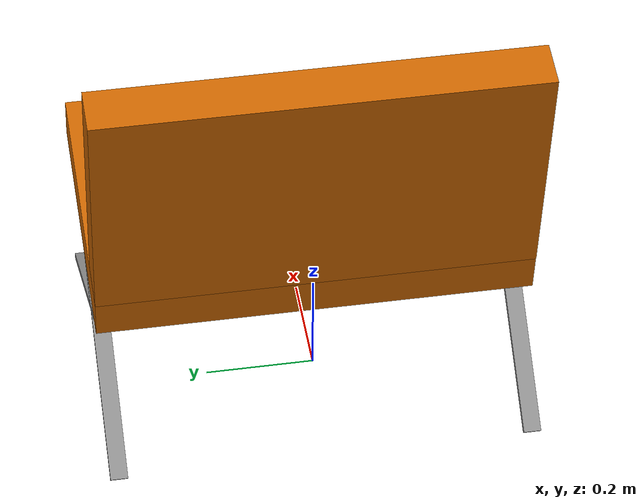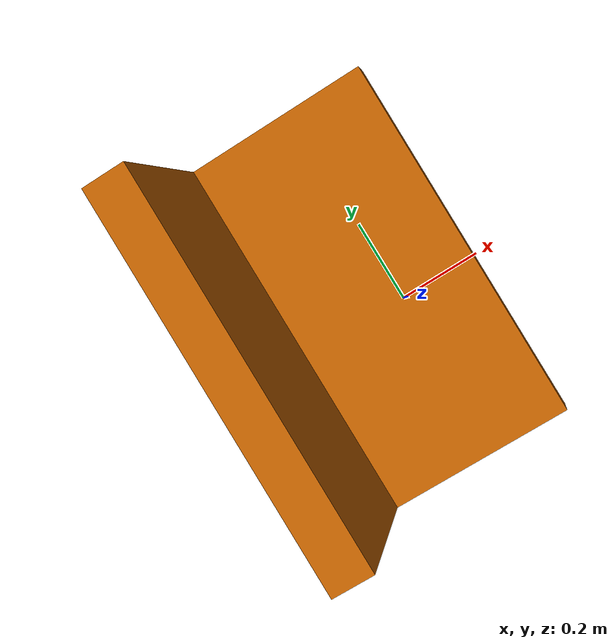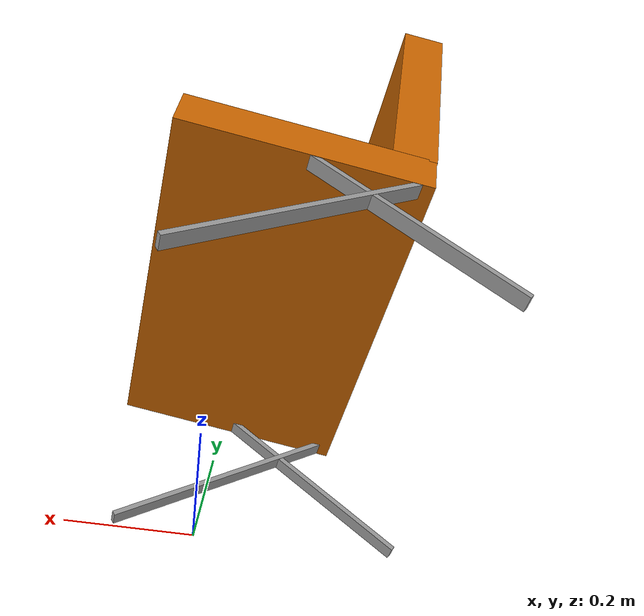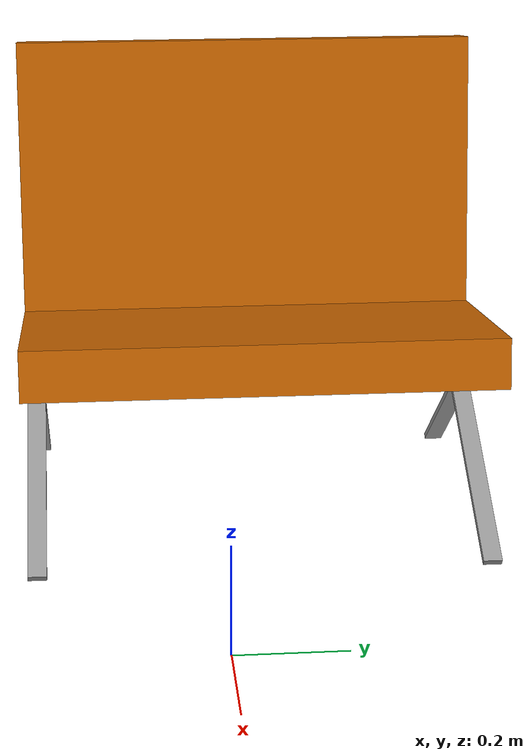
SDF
<?xml version='1.0'?>
<sdf version='1.6'>
  <model name='lounge_chair'>
    <link name='link_0'>
      <pose frame=''>-0.096052 0.046667 0.513201 0 -0.15 0</pose>
      <inertial>
        <mass>0.544036</mass>
        <inertia>
          <ixx>0.0258036</ixx>
          <ixy>0</ixy>
          <ixz>0</ixz>
          <iyy>0.016623</iyy>
          <iyz>0</iyz>
          <izz>0.0418228</izz>
        </inertia>
        <pose frame=''>0 0 0 0 -0 0</pose>
      </inertial>
      <self_collide>0</self_collide>
      <kinematic>0</kinematic>
      <gravity>1</gravity>
      <visual name='visual'>
        <pose frame=''>0 0 0 0 -0 0</pose>
        <geometry>
          <box>
            <size>0.45 0.75 0.08</size>
          </box>
        </geometry>
        <material>
          <lighting>1</lighting>
          <script>
            <uri>file://media/materials/scripts/gazebo.material</uri>
            <name>Gazebo/Grey</name>
          </script>
          <shader type='pixel'>
            <normal_map>__default__</normal_map>
          </shader>
          <ambient>0.8 0.4 0 1</ambient>
          <diffuse>0.7 0.7 0.7 1</diffuse>
          <specular>0.01 0.01 0.01 1</specular>
          <emissive>0 0 0 1</emissive>
        </material>
        <transparency>0</transparency>
        <cast_shadows>1</cast_shadows>
      </visual>
      <collision name='collision'>
        <laser_retro>0</laser_retro>
        <max_contacts>10</max_contacts>
        <pose frame=''>0 0 0 0 -0 0</pose>
        <geometry>
          <box>
            <size>0.45 0.75 0.08</size>
          </box>
        </geometry>
        <surface>
          <friction>
            <ode>
              <mu>1</mu>
              <mu2>1</mu2>
              <fdir1>0 0 0</fdir1>
              <slip1>0</slip1>
              <slip2>0</slip2>
            </ode>
            <torsional>
              <coefficient>1</coefficient>
              <patch_radius>0</patch_radius>
              <surface_radius>0</surface_radius>
              <use_patch_radius>1</use_patch_radius>
              <ode>
                <slip>0</slip>
              </ode>
            </torsional>
          </friction>
          <bounce>
            <restitution_coefficient>0</restitution_coefficient>
            <threshold>1e+06</threshold>
          </bounce>
          <contact>
            <collide_without_contact>0</collide_without_contact>
            <collide_without_contact_bitmask>1</collide_without_contact_bitmask>
            <collide_bitmask>1</collide_bitmask>
            <ode>
              <soft_cfm>0</soft_cfm>
              <soft_erp>0.2</soft_erp>
              <kp>1e+13</kp>
              <kd>1</kd>
              <max_vel>0.01</max_vel>
              <min_depth>0</min_depth>
            </ode>
            <bullet>
              <split_impulse>1</split_impulse>
              <split_impulse_penetration_threshold>-0.01</split_impulse_penetration_threshold>
              <soft_cfm>0</soft_cfm>
              <soft_erp>0.2</soft_erp>
              <kp>1e+13</kp>
              <kd>1</kd>
            </bullet>
          </contact>
        </surface>
      </collision>
    </link>
    <link name='link_0_clone'>
      <pose frame=''>-0.319159 0.046667 0.742889 3.14159 -1.42159 3.14159</pose>
      <inertial>
        <mass>0.41437</mass>
        <inertia>
          <ixx>0.0196446</ixx>
          <ixy>0</ixy>
          <ixz>0</ixz>
          <iyy>0.00743262</iyy>
          <iyz>0</iyz>
          <izz>0.0266352</izz>
        </inertia>
        <pose frame=''>0 0 0 0 -0 0</pose>
      </inertial>
      <self_collide>0</self_collide>
      <kinematic>0</kinematic>
      <gravity>1</gravity>
      <visual name='visual'>
        <pose frame=''>0 0 0 0 -0 0</pose>
        <geometry>
          <box>
            <size>0.45 0.75 0.08</size>
          </box>
        </geometry>
        <material>
          <lighting>1</lighting>
          <script>
            <uri>file://media/materials/scripts/gazebo.material</uri>
            <name>Gazebo/Grey</name>
          </script>
          <shader type='pixel'>
            <normal_map>__default__</normal_map>
          </shader>
          <ambient>0.8 0.4 0 1</ambient>
          <diffuse>0.7 0.7 0.7 1</diffuse>
          <specular>0.01 0.01 0.01 1</specular>
          <emissive>0 0 0 1</emissive>
        </material>
        <transparency>0</transparency>
        <cast_shadows>1</cast_shadows>
      </visual>
      <collision name='collision'>
        <laser_retro>0</laser_retro>
        <max_contacts>10</max_contacts>
        <pose frame=''>0 0 0 0 -0 0</pose>
        <geometry>
          <box>
            <size>0.45 0.75 0.08</size>
          </box>
        </geometry>
        <surface>
          <friction>
            <ode>
              <mu>1</mu>
              <mu2>1</mu2>
              <fdir1>0 0 0</fdir1>
              <slip1>0</slip1>
              <slip2>0</slip2>
            </ode>
            <torsional>
              <coefficient>1</coefficient>
              <patch_radius>0</patch_radius>
              <surface_radius>0</surface_radius>
              <use_patch_radius>1</use_patch_radius>
              <ode>
                <slip>0</slip>
              </ode>
            </torsional>
          </friction>
          <bounce>
            <restitution_coefficient>0</restitution_coefficient>
            <threshold>1e+06</threshold>
          </bounce>
          <contact>
            <collide_without_contact>0</collide_without_contact>
            <collide_without_contact_bitmask>1</collide_without_contact_bitmask>
            <collide_bitmask>1</collide_bitmask>
            <ode>
              <soft_cfm>0</soft_cfm>
              <soft_erp>0.2</soft_erp>
              <kp>1e+13</kp>
              <kd>1</kd>
              <max_vel>0.01</max_vel>
              <min_depth>0</min_depth>
            </ode>
            <bullet>
              <split_impulse>1</split_impulse>
              <split_impulse_penetration_threshold>-0.01</split_impulse_penetration_threshold>
              <soft_cfm>0</soft_cfm>
              <soft_erp>0.2</soft_erp>
              <kp>1e+13</kp>
              <kd>1</kd>
            </bullet>
          </contact>
        </surface>
      </collision>
    </link>
    <link name='link_2'>
      <pose frame=''>-0.087065 -0.312224 0.333962 0 -1.05637 0</pose>
      <inertial>
        <mass>0.489913</mass>
        <inertia>
          <ixx>0.00990087</ixx>
          <ixy>0</ixy>
          <ixz>0</ixz>
          <iyy>0.00980288</iyy>
          <iyz>0</iyz>
          <izz>0.00010615</izz>
        </inertia>
        <pose frame=''>0 0 0 0 -0 0</pose>
      </inertial>
      <self_collide>0</self_collide>
      <kinematic>0</kinematic>
      <gravity>1</gravity>
      <visual name='visual'>
        <pose frame=''>0 0 0 0 -0 0</pose>
        <geometry>
          <box>
            <size>0.01 0.03 0.489911</size>
          </box>
        </geometry>
        <material>
          <lighting>1</lighting>
          <script>
            <uri>file://media/materials/scripts/gazebo.material</uri>
            <name>Gazebo/Grey</name>
          </script>
          <shader type='pixel'>
            <normal_map>__default__</normal_map>
          </shader>
          <ambient>0.75 0.75 0.75 1</ambient>
          <diffuse>0.7 0.7 0.7 1</diffuse>
          <specular>0.01 0.01 0.01 1</specular>
          <emissive>0 0 0 1</emissive>
        </material>
        <transparency>0</transparency>
        <cast_shadows>1</cast_shadows>
      </visual>
      <collision name='collision'>
        <laser_retro>0</laser_retro>
        <max_contacts>10</max_contacts>
        <pose frame=''>0 0 0 0 -0 0</pose>
        <geometry>
          <box>
            <size>0.01 0.03 0.489911</size>
          </box>
        </geometry>
        <surface>
          <friction>
            <ode>
              <mu>1</mu>
              <mu2>1</mu2>
              <fdir1>0 0 0</fdir1>
              <slip1>0</slip1>
              <slip2>0</slip2>
            </ode>
            <torsional>
              <coefficient>1</coefficient>
              <patch_radius>0</patch_radius>
              <surface_radius>0</surface_radius>
              <use_patch_radius>1</use_patch_radius>
              <ode>
                <slip>0</slip>
              </ode>
            </torsional>
          </friction>
          <bounce>
            <restitution_coefficient>0</restitution_coefficient>
            <threshold>1e+06</threshold>
          </bounce>
          <contact>
            <collide_without_contact>0</collide_without_contact>
            <collide_without_contact_bitmask>1</collide_without_contact_bitmask>
            <collide_bitmask>1</collide_bitmask>
            <ode>
              <soft_cfm>0</soft_cfm>
              <soft_erp>0.2</soft_erp>
              <kp>1e+13</kp>
              <kd>1</kd>
              <max_vel>0.01</max_vel>
              <min_depth>0</min_depth>
            </ode>
            <bullet>
              <split_impulse>1</split_impulse>
              <split_impulse_penetration_threshold>-0.01</split_impulse_penetration_threshold>
              <soft_cfm>0</soft_cfm>
              <soft_erp>0.2</soft_erp>
              <kp>1e+13</kp>
              <kd>1</kd>
            </bullet>
          </contact>
        </surface>
      </collision>
    </link>
    <link name='link_2_clone'>
      <pose frame=''>-0.087065 0.406318 0.333962 0 -1.05637 0</pose>
      <inertial>
        <mass>0.489913</mass>
        <inertia>
          <ixx>0.00990087</ixx>
          <ixy>0</ixy>
          <ixz>0</ixz>
          <iyy>0.00980288</iyy>
          <iyz>0</iyz>
          <izz>0.00010615</izz>
        </inertia>
        <pose frame=''>0 0 0 0 -0 0</pose>
      </inertial>
      <self_collide>0</self_collide>
      <kinematic>0</kinematic>
      <gravity>1</gravity>
      <visual name='visual'>
        <pose frame=''>0 0 0 0 -0 0</pose>
        <geometry>
          <box>
            <size>0.01 0.03 0.489911</size>
          </box>
        </geometry>
        <material>
          <lighting>1</lighting>
          <script>
            <uri>file://media/materials/scripts/gazebo.material</uri>
            <name>Gazebo/Grey</name>
          </script>
          <shader type='pixel'>
            <normal_map>__default__</normal_map>
          </shader>
          <ambient>0.75 0.75 0.75 1</ambient>
          <diffuse>0.7 0.7 0.7 1</diffuse>
          <specular>0.01 0.01 0.01 1</specular>
          <emissive>0 0 0 1</emissive>
        </material>
        <transparency>0</transparency>
        <cast_shadows>1</cast_shadows>
      </visual>
      <collision name='collision'>
        <laser_retro>0</laser_retro>
        <max_contacts>10</max_contacts>
        <pose frame=''>0 0 0 0 -0 0</pose>
        <geometry>
          <box>
            <size>0.01 0.03 0.489911</size>
          </box>
        </geometry>
        <surface>
          <friction>
            <ode>
              <mu>1</mu>
              <mu2>1</mu2>
              <fdir1>0 0 0</fdir1>
              <slip1>0</slip1>
              <slip2>0</slip2>
            </ode>
            <torsional>
              <coefficient>1</coefficient>
              <patch_radius>0</patch_radius>
              <surface_radius>0</surface_radius>
              <use_patch_radius>1</use_patch_radius>
              <ode>
                <slip>0</slip>
              </ode>
            </torsional>
          </friction>
          <bounce>
            <restitution_coefficient>0</restitution_coefficient>
            <threshold>1e+06</threshold>
          </bounce>
          <contact>
            <collide_without_contact>0</collide_without_contact>
            <collide_without_contact_bitmask>1</collide_without_contact_bitmask>
            <collide_bitmask>1</collide_bitmask>
            <ode>
              <soft_cfm>0</soft_cfm>
              <soft_erp>0.2</soft_erp>
              <kp>1e+13</kp>
              <kd>1</kd>
              <max_vel>0.01</max_vel>
              <min_depth>0</min_depth>
            </ode>
            <bullet>
              <split_impulse>1</split_impulse>
              <split_impulse_penetration_threshold>-0.01</split_impulse_penetration_threshold>
              <soft_cfm>0</soft_cfm>
              <soft_erp>0.2</soft_erp>
              <kp>1e+13</kp>
              <kd>1</kd>
            </bullet>
          </contact>
        </surface>
      </collision>
    </link>
    <link name='link_2_clone_0'>
      <pose frame=''>-0.244757 0.405854 0.361914 -3.14159 -0.893765 -3.14159</pose>
      <inertial>
        <mass>0.489913</mass>
        <inertia>
          <ixx>0.00990087</ixx>
          <ixy>0</ixy>
          <ixz>0</ixz>
          <iyy>0.00980288</iyy>
          <iyz>0</iyz>
          <izz>0.00010615</izz>
        </inertia>
        <pose frame=''>0 0 0 0 -0 0</pose>
      </inertial>
      <self_collide>0</self_collide>
      <kinematic>0</kinematic>
      <gravity>1</gravity>
      <visual name='visual'>
        <pose frame=''>0 0 0 0 -0 0</pose>
        <geometry>
          <box>
            <size>0.01 0.03 0.489911</size>
          </box>
        </geometry>
        <material>
          <lighting>1</lighting>
          <script>
            <uri>file://media/materials/scripts/gazebo.material</uri>
            <name>Gazebo/Grey</name>
          </script>
          <shader type='pixel'>
            <normal_map>__default__</normal_map>
          </shader>
          <ambient>0.75 0.75 0.75 1</ambient>
          <diffuse>0.7 0.7 0.7 1</diffuse>
          <specular>0.01 0.01 0.01 1</specular>
          <emissive>0 0 0 1</emissive>
        </material>
        <transparency>0</transparency>
        <cast_shadows>1</cast_shadows>
      </visual>
      <collision name='collision'>
        <laser_retro>0</laser_retro>
        <max_contacts>10</max_contacts>
        <pose frame=''>0 0 0 0 -0 0</pose>
        <geometry>
          <box>
            <size>0.01 0.03 0.489911</size>
          </box>
        </geometry>
        <surface>
          <friction>
            <ode>
              <mu>1</mu>
              <mu2>1</mu2>
              <fdir1>0 0 0</fdir1>
              <slip1>0</slip1>
              <slip2>0</slip2>
            </ode>
            <torsional>
              <coefficient>1</coefficient>
              <patch_radius>0</patch_radius>
              <surface_radius>0</surface_radius>
              <use_patch_radius>1</use_patch_radius>
              <ode>
                <slip>0</slip>
              </ode>
            </torsional>
          </friction>
          <bounce>
            <restitution_coefficient>0</restitution_coefficient>
            <threshold>1e+06</threshold>
          </bounce>
          <contact>
            <collide_without_contact>0</collide_without_contact>
            <collide_without_contact_bitmask>1</collide_without_contact_bitmask>
            <collide_bitmask>1</collide_bitmask>
            <ode>
              <soft_cfm>0</soft_cfm>
              <soft_erp>0.2</soft_erp>
              <kp>1e+13</kp>
              <kd>1</kd>
              <max_vel>0.01</max_vel>
              <min_depth>0</min_depth>
            </ode>
            <bullet>
              <split_impulse>1</split_impulse>
              <split_impulse_penetration_threshold>-0.01</split_impulse_penetration_threshold>
              <soft_cfm>0</soft_cfm>
              <soft_erp>0.2</soft_erp>
              <kp>1e+13</kp>
              <kd>1</kd>
            </bullet>
          </contact>
        </surface>
      </collision>
    </link>
    <link name='link_2_clone_0_clone'>
      <pose frame=''>-0.244739 -0.313332 0.361914 -3.14159 -0.893765 -3.14159</pose>
      <inertial>
        <mass>0.489913</mass>
        <inertia>
          <ixx>0.00990087</ixx>
          <ixy>0</ixy>
          <ixz>0</ixz>
          <iyy>0.00980288</iyy>
          <iyz>0</iyz>
          <izz>0.00010615</izz>
        </inertia>
        <pose frame=''>0 0 0 0 -0 0</pose>
      </inertial>
      <self_collide>0</self_collide>
      <kinematic>0</kinematic>
      <gravity>1</gravity>
      <visual name='visual'>
        <pose frame=''>0 0 0 0 -0 0</pose>
        <geometry>
          <box>
            <size>0.01 0.03 0.489911</size>
          </box>
        </geometry>
        <material>
          <lighting>1</lighting>
          <script>
            <uri>file://media/materials/scripts/gazebo.material</uri>
            <name>Gazebo/Grey</name>
          </script>
          <shader type='pixel'>
            <normal_map>__default__</normal_map>
          </shader>
          <ambient>0.75 0.75 0.75 1</ambient>
          <diffuse>0.7 0.7 0.7 1</diffuse>
          <specular>0.01 0.01 0.01 1</specular>
          <emissive>0 0 0 1</emissive>
        </material>
        <transparency>0</transparency>
        <cast_shadows>1</cast_shadows>
      </visual>
      <collision name='collision'>
        <laser_retro>0</laser_retro>
        <max_contacts>10</max_contacts>
        <pose frame=''>0 0 0 0 -0 0</pose>
        <geometry>
          <box>
            <size>0.01 0.03 0.489911</size>
          </box>
        </geometry>
        <surface>
          <friction>
            <ode>
              <mu>1</mu>
              <mu2>1</mu2>
              <fdir1>0 0 0</fdir1>
              <slip1>0</slip1>
              <slip2>0</slip2>
            </ode>
            <torsional>
              <coefficient>1</coefficient>
              <patch_radius>0</patch_radius>
              <surface_radius>0</surface_radius>
              <use_patch_radius>1</use_patch_radius>
              <ode>
                <slip>0</slip>
              </ode>
            </torsional>
          </friction>
          <bounce>
            <restitution_coefficient>0</restitution_coefficient>
            <threshold>1e+06</threshold>
          </bounce>
          <contact>
            <collide_without_contact>0</collide_without_contact>
            <collide_without_contact_bitmask>1</collide_without_contact_bitmask>
            <collide_bitmask>1</collide_bitmask>
            <ode>
              <soft_cfm>0</soft_cfm>
              <soft_erp>0.2</soft_erp>
              <kp>1e+13</kp>
              <kd>1</kd>
              <max_vel>0.01</max_vel>
              <min_depth>0</min_depth>
            </ode>
            <bullet>
              <split_impulse>1</split_impulse>
              <split_impulse_penetration_threshold>-0.01</split_impulse_penetration_threshold>
              <soft_cfm>0</soft_cfm>
              <soft_erp>0.2</soft_erp>
              <kp>1e+13</kp>
              <kd>1</kd>
            </bullet>
          </contact>
        </surface>
      </collision>
    </link>
    <joint name='link_0_JOINT_10' type='fixed'>
      <parent>link_0</parent>
      <child>link_2_clone</child>
      <pose frame=''>0 0 0 0 -0 0</pose>
      <physics>
        <ode>
          <limit>
            <cfm>0</cfm>
            <erp>0.2</erp>
          </limit>
          <suspension>
            <cfm>0</cfm>
            <erp>0.2</erp>
          </suspension>
        </ode>
      </physics>
    </joint>
    <joint name='link_0_JOINT_1' type='fixed'>
      <parent>link_0</parent>
      <child>link_0_clone</child>
      <pose frame=''>0 0 0 0 -0 0</pose>
      <physics>
        <ode>
          <limit>
            <cfm>0</cfm>
            <erp>0.2</erp>
          </limit>
          <suspension>
            <cfm>0</cfm>
            <erp>0.2</erp>
          </suspension>
        </ode>
      </physics>
    </joint>
    <joint name='link_0_JOINT_5' type='fixed'>
      <parent>link_0</parent>
      <child>link_2_clone_0_clone</child>
      <pose frame=''>0 0 0 0 -0 0</pose>
      <physics>
        <ode>
          <limit>
            <cfm>0</cfm>
            <erp>0.2</erp>
          </limit>
          <suspension>
            <cfm>0</cfm>
            <erp>0.2</erp>
          </suspension>
        </ode>
      </physics>
    </joint>
    <joint name='link_0_JOINT_8' type='fixed'>
      <parent>link_0</parent>
      <child>link_2</child>
      <pose frame=''>0 0 0 0 -0 0</pose>
      <physics>
        <ode>
          <limit>
            <cfm>0</cfm>
            <erp>0.2</erp>
          </limit>
          <suspension>
            <cfm>0</cfm>
            <erp>0.2</erp>
          </suspension>
        </ode>
      </physics>
    </joint>
    <joint name='link_0_JOINT_9' type='fixed'>
      <parent>link_0</parent>
      <child>link_2_clone_0</child>
      <pose frame=''>0 0 0 0 -0 0</pose>
      <physics>
        <ode>
          <limit>
            <cfm>0</cfm>
            <erp>0.2</erp>
          </limit>
          <suspension>
            <cfm>0</cfm>
            <erp>0.2</erp>
          </suspension>
        </ode>
      </physics>
    </joint>
    <static>0</static>
    <allow_auto_disable>1</allow_auto_disable>
  </model>
</sdf>
